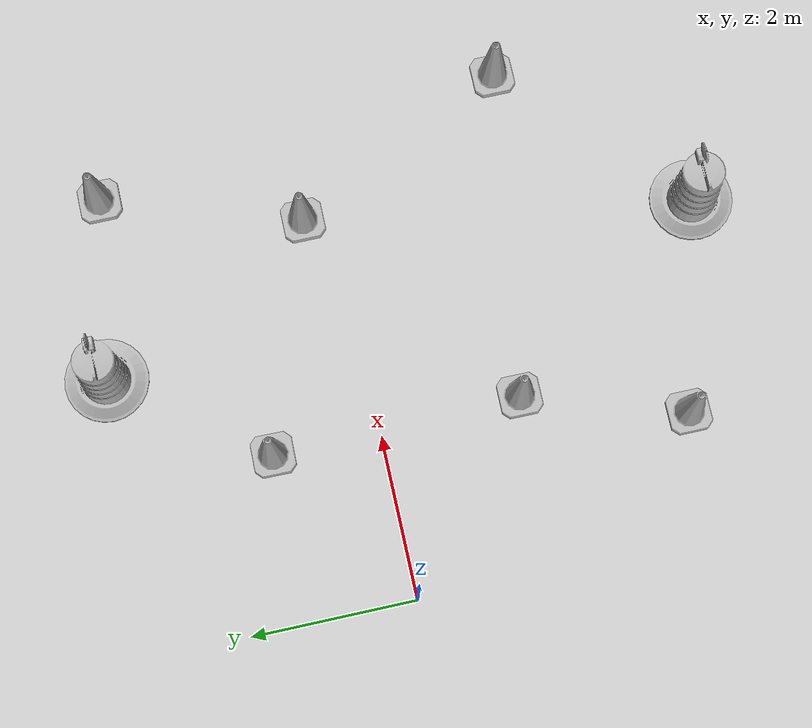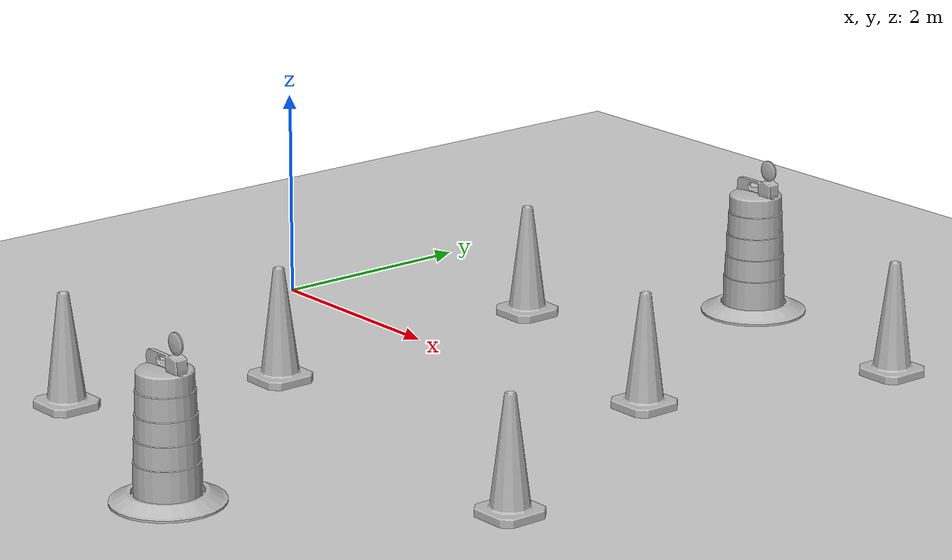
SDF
<sdf version="1.7">
 <world name="default">
  <light name="sun" type="directional">
   <pose>0 0 10 0 -0 0</pose>
   <diffuse>0.8 0.8 0.8 1</diffuse>
   <specular>0.2 0.2 0.2 1</specular>
   <attenuation>
    <range>1000</range>
    <constant>0.9</constant>
    <linear>0.01</linear>
    <quadratic>0.001</quadratic>
   </attenuation>
   <direction>-0.5 0.1 -0.9</direction>
   <spot><inner_angle>0</inner_angle><outer_angle>0</outer_angle><falloff>0</falloff></spot>
  </light>
  <model name="ground_plane">
   <static>1</static>
   <link name="link">
    <collision name="collision">
     <geometry><plane><normal>0 0 1</normal><size>100 100</size></plane></geometry>
     <surface>
      <contact><collide_bitmask>65535</collide_bitmask></contact>
      <friction><ode><mu>100</mu><mu2>50</mu2></ode></friction>
     </surface>
    </collision>
    <visual name="visual">
     <cast_shadows>0</cast_shadows>
     <geometry><plane><normal>0 0 1</normal><size>100 100</size></plane></geometry>
     <material>
      <script><uri>file://media/materials/scripts/gazebo.material</uri><name>Gazebo/Grey</name></script>
     </material>
    </visual>
   </link>
  </model>
  <gravity>0 0 -9.8</gravity>
  <magnetic_field>6e-06 2.3e-05 -4.2e-05</magnetic_field>
  <atmosphere type="adiabatic"/>
  <physics type="ode">
   <max_step_size>0.001</max_step_size>
   <real_time_factor>1</real_time_factor>
   <real_time_update_rate>1000</real_time_update_rate>
  </physics>
  <scene><ambient>0.4 0.4 0.4 1</ambient><background>0.7 0.7 0.7 1</background><shadows>1</shadows></scene>
  <audio><device>default</device></audio>
  <spherical_coordinates>
   <surface_model>EARTH_WGS84</surface_model>
   <latitude_deg>0</latitude_deg>
   <longitude_deg>0</longitude_deg>
   <elevation>0</elevation>
   <heading_deg>0</heading_deg>
  </spherical_coordinates>
  <model name="Construction Cone">
   <link name="link">
    <collision name="collision">
     <geometry>
      <mesh><scale>10 10 10</scale><uri>model://construction_cone/meshes/construction_cone.dae</uri></mesh>
     </geometry>
    </collision>
    <visual name="visual">
     <geometry>
      <mesh><scale>10 10 10</scale><uri>model://construction_cone/meshes/construction_cone.dae</uri></mesh>
     </geometry>
    </visual>
    <inertial>
     <inertia><ixx>1</ixx><ixy>0</ixy><ixz>0</ixz><iyy>1</iyy><iyz>0</iyz><izz>1</izz></inertia>
     <mass>1</mass>
    </inertial>
   </link>
   <pose>2.05292 1.31005 -0 0 0 -0.01355</pose>
  </model>
  <model name="Construction Cone_clone">
   <link name="link">
    <collision name="collision">
     <geometry>
      <mesh><scale>10 10 10</scale><uri>model://construction_cone/meshes/construction_cone.dae</uri></mesh>
     </geometry>
    </collision>
    <visual name="visual">
     <geometry>
      <mesh><scale>10 10 10</scale><uri>model://construction_cone/meshes/construction_cone.dae</uri></mesh>
     </geometry>
    </visual>
    <inertial>
     <inertia><ixx>1</ixx><ixy>0</ixy><ixz>0</ixz><iyy>1</iyy><iyz>0</iyz><izz>1</izz></inertia>
     <mass>1</mass>
    </inertial>
   </link>
   <pose>2.11883 -1.72402 -0 0 -1e-06 -0.004994</pose>
  </model>
  <model name="Construction Cone_clone_0">
   <link name="link">
    <collision name="collision">
     <geometry>
      <mesh><scale>10 10 10</scale><uri>model://construction_cone/meshes/construction_cone.dae</uri></mesh>
     </geometry>
    </collision>
    <visual name="visual">
     <geometry>
      <mesh><scale>10 10 10</scale><uri>model://construction_cone/meshes/construction_cone.dae</uri></mesh>
     </geometry>
    </visual>
    <inertial>
     <inertia><ixx>1</ixx><ixy>0</ixy><ixz>0</ixz><iyy>1</iyy><iyz>0</iyz><izz>1</izz></inertia>
     <mass>1</mass>
    </inertial>
   </link>
   <pose>4.815 0.367852 -0 0 -0 0</pose>
  </model>
  <model name="Construction Barrel">
   <link name="link">
    <inertial>
     <pose>0 0 0.4 0 -0 0</pose>
     <mass>500</mass>
     <inertia><ixx>51.2096</ixx><iyy>51.2096</iyy><izz>25</izz><ixy>0</ixy><ixz>0</ixz><iyz>0</iyz></inertia>
    </inertial>
    <collision name="collision">
     <geometry><mesh><uri>model://construction_barrel/meshes/construction_barrel.dae</uri></mesh></geometry>
    </collision>
    <visual name="visual">
     <geometry><mesh><uri>model://construction_barrel/meshes/construction_barrel.dae</uri></mesh></geometry>
    </visual>
   </link>
   <pose>3.37334 3.08323 -3e-06 -9e-06 -4e-06 -2.4e-05</pose>
  </model>
  <model name="Construction Barrel_clone">
   <link name="link">
    <inertial>
     <pose>0 0 0.4 0 -0 0</pose>
     <mass>500</mass>
     <inertia><ixx>51.2096</ixx><iyy>51.2096</iyy><izz>25</izz><ixy>0</ixy><ixz>0</ixz><iyz>0</iyz></inertia>
    </inertial>
    <collision name="collision">
     <geometry><mesh><uri>model://construction_barrel/meshes/construction_barrel.dae</uri></mesh></geometry>
    </collision>
    <visual name="visual">
     <geometry><mesh><uri>model://construction_barrel/meshes/construction_barrel.dae</uri></mesh></geometry>
    </visual>
   </link>
   <pose>4.05108 -4.33417 -1e-06 3e-06 -2e-06 -1.9e-05</pose>
  </model>
  <model name="Construction Cone_clone_clone">
   <link name="link">
    <collision name="collision">
     <geometry>
      <mesh><scale>10 10 10</scale><uri>model://construction_cone/meshes/construction_cone.dae</uri></mesh>
     </geometry>
    </collision>
    <visual name="visual">
     <geometry>
      <mesh><scale>10 10 10</scale><uri>model://construction_cone/meshes/construction_cone.dae</uri></mesh>
     </geometry>
    </visual>
    <inertial>
     <inertia><ixx>1</ixx><ixy>0</ixy><ixz>0</ixz><iyy>1</iyy><iyz>0</iyz><izz>1</izz></inertia>
     <mass>1</mass>
    </inertial>
   </link>
   <pose>1.48985 -3.65869 -0 0 -0 0</pose>
  </model>
  <model name="Construction Cone_clone_clone_0">
   <link name="link">
    <collision name="collision">
     <geometry>
      <mesh><scale>10 10 10</scale><uri>model://construction_cone/meshes/construction_cone.dae</uri></mesh>
     </geometry>
    </collision>
    <visual name="visual">
     <geometry>
      <mesh><scale>10 10 10</scale><uri>model://construction_cone/meshes/construction_cone.dae</uri></mesh>
     </geometry>
    </visual>
    <inertial>
     <inertia><ixx>1</ixx><ixy>0</ixy><ixz>0</ixz><iyy>1</iyy><iyz>0</iyz><izz>1</izz></inertia>
     <mass>1</mass>
    </inertial>
   </link>
   <pose>5.59049 2.75201 -0 0 -0 0</pose>
  </model>
  <model name="Construction Cone_clone_clone_1">
   <link name="link">
    <collision name="collision">
     <geometry>
      <mesh><scale>10 10 10</scale><uri>model://construction_cone/meshes/construction_cone.dae</uri></mesh>
     </geometry>
    </collision>
    <visual name="visual">
     <geometry>
      <mesh><scale>10 10 10</scale><uri>model://construction_cone/meshes/construction_cone.dae</uri></mesh>
     </geometry>
    </visual>
    <inertial>
     <inertia><ixx>1</ixx><ixy>0</ixy><ixz>0</ixz><iyy>1</iyy><iyz>0</iyz><izz>1</izz></inertia>
     <mass>1</mass>
    </inertial>
   </link>
   <pose>6.13483 -2.31514 -0 1e-06 -1e-06 2.7e-05</pose>
  </model>
 </world>
</sdf>
